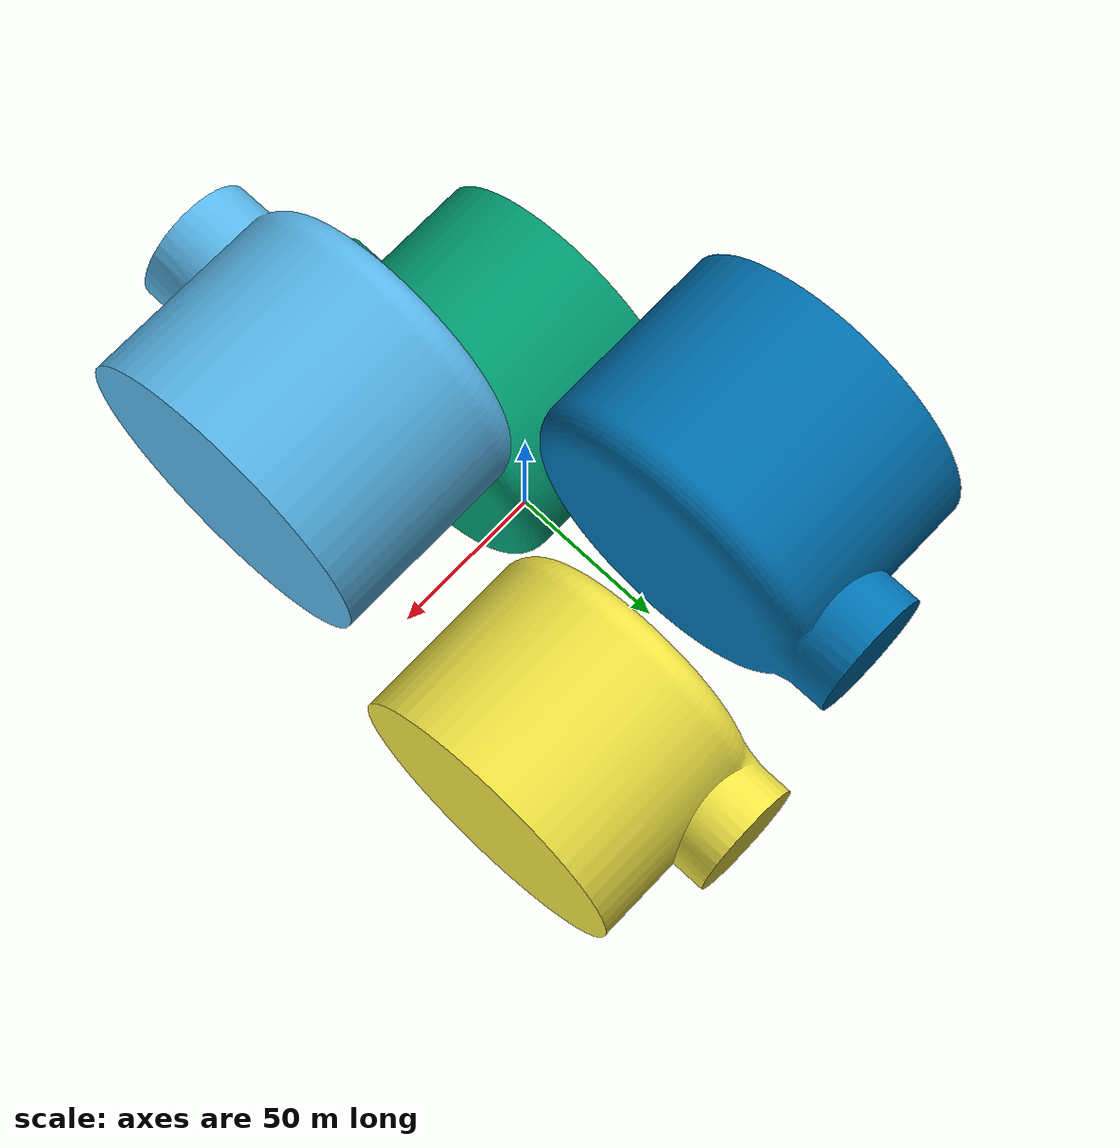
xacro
<?xml version="1.0"?>
<robot name="orthrus"
  xmlns:xacro="http://ros.org/wiki/xacro">

  <xacro:property name="meshes_folder" value="file:///$(find orthrus_gazebo)/models/orthrus/meshes" />

  <link name="body">
    <visual>
      <origin xyz="-0.10 0.1385 -0.05" rpy="${pi/2} 0 0" />
      <geometry>
        <mesh filename="${meshes_folder}/body.STL"/>
      </geometry>
    </visual>
    <collision>
      <origin xyz="-0.10 0.1385 -0.05" rpy="${pi/2} 0 0" />
      <geometry>
        <mesh filename="${meshes_folder}/body.STL"/>
      </geometry>
    </collision>
    <inertial>
      <mass value="7"/>
      <inertia ixx="4.9950395" ixy="0" ixz="0" iyy="2.4616377" iyz="0" izz="6.4183150" />
    </inertial>
  </link>

  <gazebo reference="body">
    <visual>
      <material>
        <ambient>0 0.8 0 1</ambient>
        <diffuse>0 0.8 0 1</diffuse>
        <specular>0 0.8 0 1</specular>
      </material>
    </visual>
  </gazebo>

  <xacro:macro name="hip" params="prefix">
    <link name="hip_${prefix}">
      <visual>
        <origin xyz="-0.02 -0.05 -0.05" rpy="0 0 0" />
        <geometry>
          <mesh filename="${meshes_folder}/hip.STL"/>
        </geometry>
      </visual>
      <collision>
        <origin xyz="-0.02 -0.05 -0.05" rpy="0 0 0" />
        <geometry>
          <mesh filename="${meshes_folder}/hip.STL"/>
        </geometry>
      </collision>
      <inertial>
        <mass value="0.7"/>
        <inertia ixx="0.0904981" ixy="0" ixz="-0.0000480" iyy=" 0.0917319" iyz="0" izz="0.0857923" />
      </inertial>
    </link>

    <gazebo reference="hip_${prefix}">
      <visual>
        <material>
          <ambient>0 0.8 0 1</ambient>
          <diffuse>0 0.8 0 1</diffuse>
          <specular>0 0.8 0 1</specular>
        </material>
      </visual>
    </gazebo>

    <joint name="hip_${prefix}_joint" type="revolute">
      <axis xyz="0 0 1"/>
      <parent link="body"/>
      <child link="hip_${prefix}"/>
      <dynamics damping="0.1" friction="0.01"/>
      <limit effort="35.0" lower="-${pi/2}" upper="${pi/2}" velocity="${pi}"/>
      <xacro:if value="${prefix == 'LF'}">
        <origin xyz="-0.05 0.20 0" rpy="${pi/2} ${pi} 0" />
      </xacro:if>
      <xacro:if value="${prefix == 'LB'}">
        <origin xyz="-0.05 -0.20 0" rpy="-${pi/2} ${pi} 0" />
      </xacro:if>
      <xacro:if value="${prefix == 'RB'}">
        <origin xyz="0.05 -0.20 0" rpy="${pi/2} ${pi} ${pi}" />
      </xacro:if>
      <xacro:if value="${prefix == 'RF'}">
        <origin xyz="0.05 0.20 0" rpy="-${pi/2} ${pi} ${pi}" />
      </xacro:if>

    </joint>
  </xacro:macro>

  <xacro:hip prefix="RF"/>
  <xacro:hip prefix="LF"/>
  <xacro:hip prefix="RB"/>
  <xacro:hip prefix="LB"/>

  <xacro:macro name="ros2_hip_joint" params="prefix">
    <joint name="hip_${prefix}_joint">
      <command_interface name="effort">
        <param name="min">-35</param>
        <param name="max">35</param>
      </command_interface>
      <state_interface name="position">
        <param name="initial_value">1.0</param>
      </state_interface>
      <state_interface name="velocity"/>
      <state_interface name="effort"/>
    </joint>
  </xacro:macro>

  <ros2_control name="IgnitionSystem" type="system">
    <hardware>
      <plugin>ign_ros2_control/IgnitionSystem</plugin>
    </hardware>

    <xacro:ros2_hip_joint prefix="RF"/>
    <xacro:ros2_hip_joint prefix="LF"/>
    <xacro:ros2_hip_joint prefix="RB"/>
    <xacro:ros2_hip_joint prefix="LB"/>

  </ros2_control>

  <gazebo>
    <plugin filename="ign_ros2_control-system" name="ign_ros2_control::IgnitionROS2ControlPlugin">
      <parameters>$(find orthrus_ign)/config/test.yaml</parameters>
    </plugin>
  </gazebo>
</robot>
